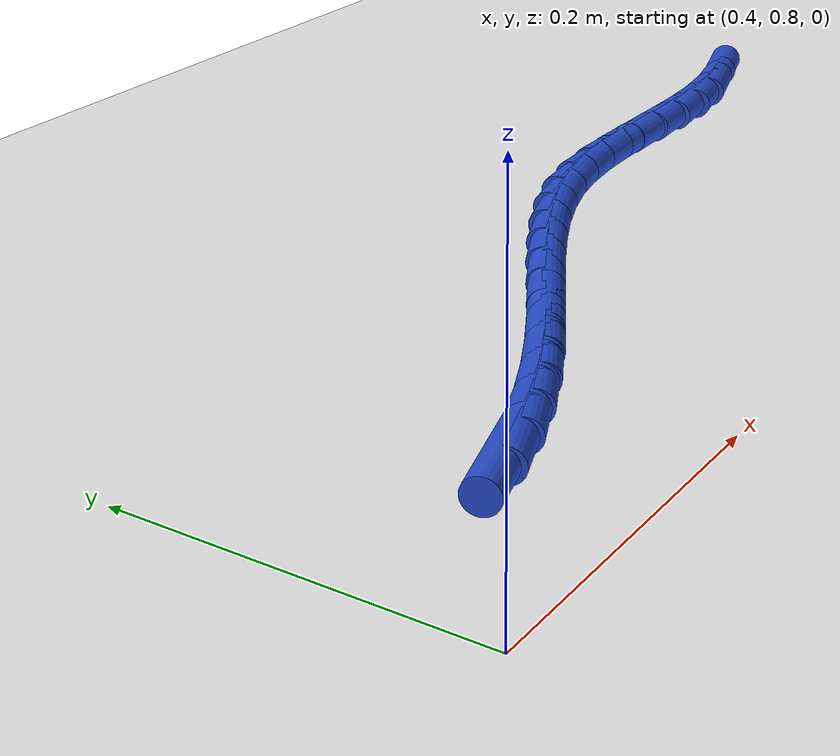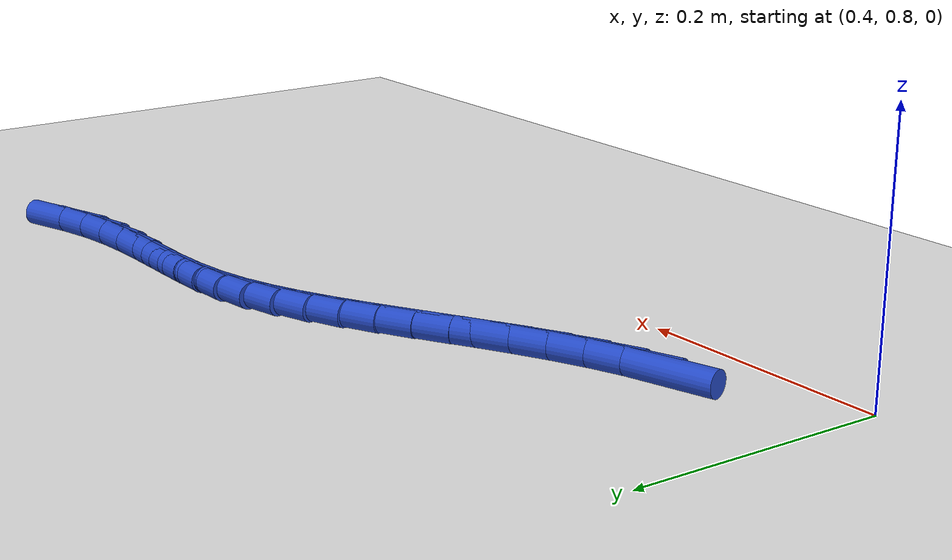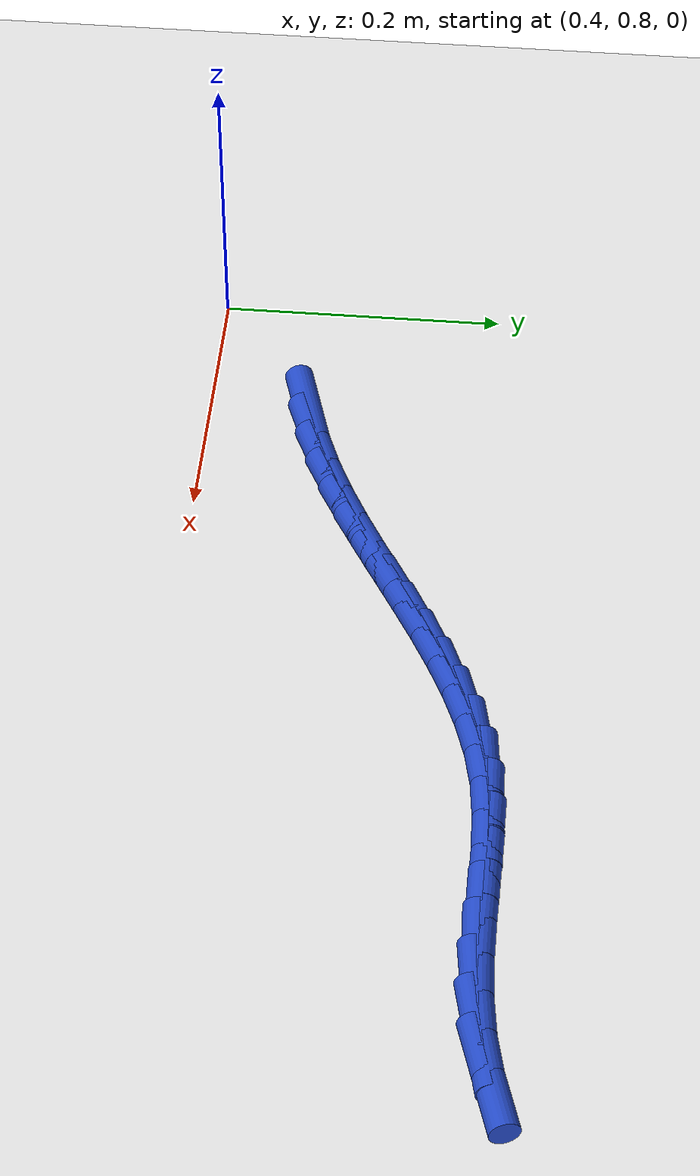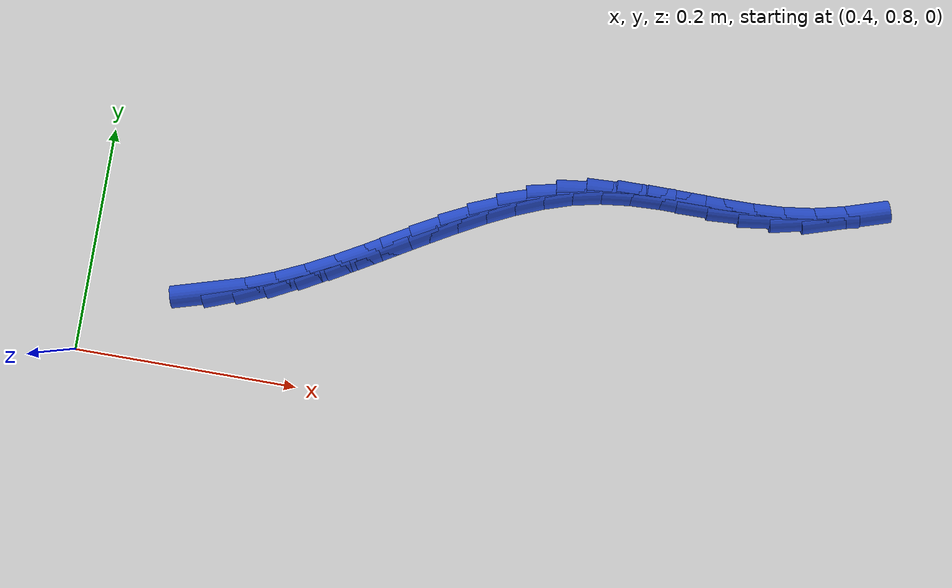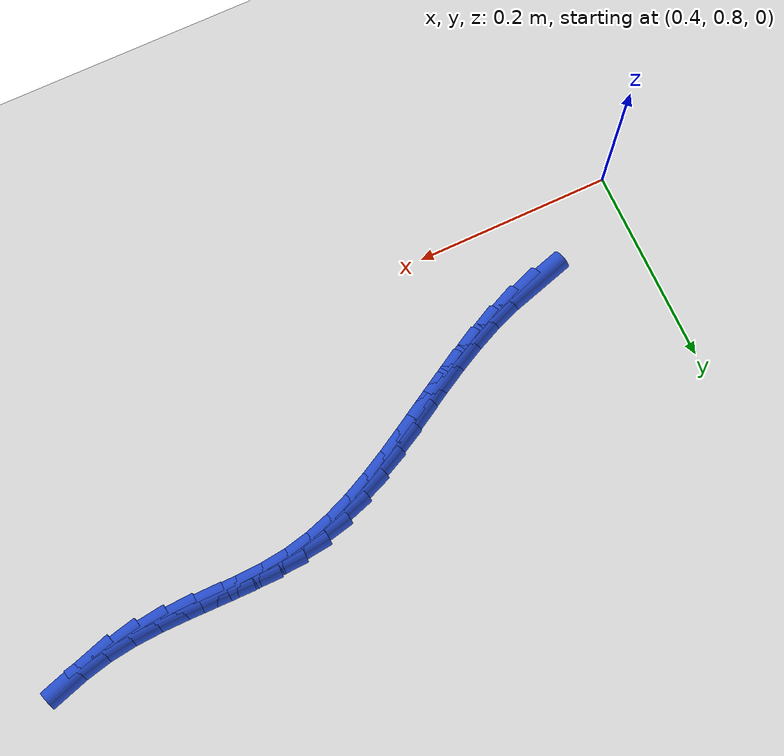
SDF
<sdf version="1.6">
 <world name="default">
  <model name="ground_plane">
   <static>1</static>
   <link name="link">
    <collision name="collision">
     <geometry><plane><normal>0 0 1</normal><size>100 100</size></plane></geometry>
     <surface><friction><ode><mu>100</mu><mu2>50</mu2></ode></friction></surface>
    </collision>
    <visual name="visual">
     <cast_shadows>0</cast_shadows>
     <geometry><plane><normal>0 0 1</normal><size>100 100</size></plane></geometry>
     <material>
      <script><uri>file://media/materials/scripts/gazebo.material</uri><name>Gazebo/WhiteGlow</name></script>
     </material>
    </visual>
   </link>
  </model>
  <model name="line">
   <link name="link_42">
    <pose>0.5153796445882639 0.8720236402008416 0.01 0 1.57 0.28514573068680454</pose>
    <collision name="collision">
     <geometry><cylinder><radius>0.01</radius><length>0.08</length></cylinder></geometry>
    </collision>
    <visual name="visual">
     <material>
      <script><name>Gazebo/Blue</name><uri>file://media/materials/scripts/gazebo.material</uri></script>
     </material>
     <geometry><cylinder><radius>0.01</radius><length>0.08</length></cylinder></geometry>
    </visual>
   </link>
   <link name="link_43">
    <pose>0.5420883910280179 0.8798528778499993 0.01 0 1.57 0.36401060627234266</pose>
    <collision name="collision">
     <geometry><cylinder><radius>0.01</radius><length>0.08</length></cylinder></geometry>
    </collision>
    <visual name="visual">
     <material>
      <script><name>Gazebo/Blue</name><uri>file://media/materials/scripts/gazebo.material</uri></script>
     </material>
     <geometry><cylinder><radius>0.01</radius><length>0.08</length></cylinder></geometry>
    </visual>
   </link>
   <link name="link_44">
    <pose>0.5680662078932549 0.8897501305601909 0.01 0 1.57 0.4275063619447899</pose>
    <collision name="collision">
     <geometry><cylinder><radius>0.01</radius><length>0.08</length></cylinder></geometry>
    </collision>
    <visual name="visual">
     <material>
      <script><name>Gazebo/Blue</name><uri>file://media/materials/scripts/gazebo.material</uri></script>
     </material>
     <geometry><cylinder><radius>0.01</radius><length>0.08</length></cylinder></geometry>
    </visual>
   </link>
   <link name="link_45">
    <pose>0.5934311161708884 0.9013065433797589 0.01 0 1.57 0.47553280146876165</pose>
    <collision name="collision">
     <geometry><cylinder><radius>0.01</radius><length>0.08</length></cylinder></geometry>
    </collision>
    <visual name="visual">
     <material>
      <script><name>Gazebo/Blue</name><uri>file://media/materials/scripts/gazebo.material</uri></script>
     </material>
     <geometry><cylinder><radius>0.01</radius><length>0.08</length></cylinder></geometry>
    </visual>
   </link>
   <link name="link_46">
    <pose>0.6183011368478332 0.9141132613570462 0.01 0 1.57 0.5083723859201813</pose>
    <collision name="collision">
     <geometry><cylinder><radius>0.01</radius><length>0.08</length></cylinder></geometry>
    </collision>
    <visual name="visual">
     <material>
      <script><name>Gazebo/Blue</name><uri>file://media/materials/scripts/gazebo.material</uri></script>
     </material>
     <geometry><cylinder><radius>0.01</radius><length>0.08</length></cylinder></geometry>
    </visual>
   </link>
   <link name="link_47">
    <pose>0.6427942909110029 0.9277614295403946 0.01 0 1.57 0.5263511903529184</pose>
    <collision name="collision">
     <geometry><cylinder><radius>0.01</radius><length>0.08</length></cylinder></geometry>
    </collision>
    <visual name="visual">
     <material>
      <script><name>Gazebo/Blue</name><uri>file://media/materials/scripts/gazebo.material</uri></script>
     </material>
     <geometry><cylinder><radius>0.01</radius><length>0.08</length></cylinder></geometry>
    </visual>
   </link>
   <link name="link_48">
    <pose>0.6670285993473112 0.9418421929781471 0.01 0 1.57 0.5296205427475181</pose>
    <collision name="collision">
     <geometry><cylinder><radius>0.01</radius><length>0.08</length></cylinder></geometry>
    </collision>
    <visual name="visual">
     <material>
      <script><name>Gazebo/Blue</name><uri>file://media/materials/scripts/gazebo.material</uri></script>
     </material>
     <geometry><cylinder><radius>0.01</radius><length>0.08</length></cylinder></geometry>
    </visual>
   </link>
   <link name="link_49">
    <pose>0.6911220831436723 0.9559466967186456 0.01 0 1.57 0.5180403513013273</pose>
    <collision name="collision">
     <geometry><cylinder><radius>0.01</radius><length>0.08</length></cylinder></geometry>
    </collision>
    <visual name="visual">
     <material>
      <script><name>Gazebo/Blue</name><uri>file://media/materials/scripts/gazebo.material</uri></script>
     </material>
     <geometry><cylinder><radius>0.01</radius><length>0.08</length></cylinder></geometry>
    </visual>
   </link>
   <link name="link_50">
    <pose>0.7151927632870003 0.9696660858102333 0.01 0 1.57 0.49114668452280724</pose>
    <collision name="collision">
     <geometry><cylinder><radius>0.01</radius><length>0.08</length></cylinder></geometry>
    </collision>
    <visual name="visual">
     <material>
      <script><name>Gazebo/Blue</name><uri>file://media/materials/scripts/gazebo.material</uri></script>
     </material>
     <geometry><cylinder><radius>0.01</radius><length>0.08</length></cylinder></geometry>
    </visual>
   </link>
   <link name="link_51">
    <pose>0.7393586607642093 0.9825915053012524 0.01 0 1.57 0.448206829963109</pose>
    <collision name="collision">
     <geometry><cylinder><radius>0.01</radius><length>0.08</length></cylinder></geometry>
    </collision>
    <visual name="visual">
     <material>
      <script><name>Gazebo/Blue</name><uri>file://media/materials/scripts/gazebo.material</uri></script>
     </material>
     <geometry><cylinder><radius>0.01</radius><length>0.08</length></cylinder></geometry>
    </visual>
   </link>
   <link name="link_52">
    <pose>0.7637377965622126 0.994314100240045 0.01 0 1.57 0.38839212132353085</pose>
    <collision name="collision">
     <geometry><cylinder><radius>0.01</radius><length>0.08</length></cylinder></geometry>
    </collision>
    <visual name="visual">
     <material>
      <script><name>Gazebo/Blue</name><uri>file://media/materials/scripts/gazebo.material</uri></script>
     </material>
     <geometry><cylinder><radius>0.01</radius><length>0.08</length></cylinder></geometry>
    </visual>
   </link>
   <link name="link_53">
    <pose>0.7884481916679248 1.004425015674954 0.01 0 1.57 0.31111868547416</pose>
    <collision name="collision">
     <geometry><cylinder><radius>0.01</radius><length>0.08</length></cylinder></geometry>
    </collision>
    <visual name="visual">
     <material>
      <script><name>Gazebo/Blue</name><uri>file://media/materials/scripts/gazebo.material</uri></script>
     </material>
     <geometry><cylinder><radius>0.01</radius><length>0.08</length></cylinder></geometry>
    </visual>
   </link>
   <link name="link_54">
    <pose>0.81360786706826 1.012515396654322 0.01 0 1.57 0.21659275194439018</pose>
    <collision name="collision">
     <geometry><cylinder><radius>0.01</radius><length>0.08</length></cylinder></geometry>
    </collision>
    <visual name="visual">
     <material>
      <script><name>Gazebo/Blue</name><uri>file://media/materials/scripts/gazebo.material</uri></script>
     </material>
     <geometry><cylinder><radius>0.01</radius><length>0.08</length></cylinder></geometry>
    </visual>
   </link>
   <link name="link_55">
    <pose>0.839334826599655 1.0181764726476783 0.01 0 1.57 0.11613499731957339</pose>
    <collision name="collision">
     <geometry><cylinder><radius>0.01</radius><length>0.08</length></cylinder></geometry>
    </collision>
    <visual name="visual">
     <material>
      <script><name>Gazebo/Blue</name><uri>file://media/materials/scripts/gazebo.material</uri></script>
     </material>
     <geometry><cylinder><radius>0.01</radius><length>0.08</length></cylinder></geometry>
    </visual>
   </link>
   <link name="link_56">
    <pose>0.8656958240897653 1.0212517452144667 0.01 0 1.57 0.04238606104450635</pose>
    <collision name="collision">
     <geometry><cylinder><radius>0.01</radius><length>0.08</length></cylinder></geometry>
    </collision>
    <visual name="visual">
     <material>
      <script><name>Gazebo/Blue</name><uri>file://media/materials/scripts/gazebo.material</uri></script>
     </material>
     <geometry><cylinder><radius>0.01</radius><length>0.08</length></cylinder></geometry>
    </visual>
   </link>
   <link name="link_57">
    <pose>0.8925935059429149 1.0223925152421307 0.01 0 1.57 0.0006929504338573164</pose>
    <collision name="collision">
     <geometry><cylinder><radius>0.01</radius><length>0.08</length></cylinder></geometry>
    </collision>
    <visual name="visual">
     <material>
      <script><name>Gazebo/Blue</name><uri>file://media/materials/scripts/gazebo.material</uri></script>
     </material>
     <geometry><cylinder><radius>0.01</radius><length>0.08</length></cylinder></geometry>
    </visual>
   </link>
   <link name="link_58">
    <pose>0.9198977392856119 1.0224114357255 0.01 0 1.57 -0.010524238132485623</pose>
    <collision name="collision">
     <geometry><cylinder><radius>0.01</radius><length>0.08</length></cylinder></geometry>
    </collision>
    <visual name="visual">
     <material>
      <script><name>Gazebo/Blue</name><uri>file://media/materials/scripts/gazebo.material</uri></script>
     </material>
     <geometry><cylinder><radius>0.01</radius><length>0.08</length></cylinder></geometry>
    </visual>
   </link>
   <link name="link_59">
    <pose>0.9474783912443645 1.0221211596594053 0.01 0 1.57 0.007688414099824325</pose>
    <collision name="collision">
     <geometry><cylinder><radius>0.01</radius><length>0.08</length></cylinder></geometry>
    </collision>
    <visual name="visual">
     <material>
      <script><name>Gazebo/Blue</name><uri>file://media/materials/scripts/gazebo.material</uri></script>
     </material>
     <geometry><cylinder><radius>0.01</radius><length>0.08</length></cylinder></geometry>
    </visual>
   </link>
   <link name="link_60">
    <pose>0.9752053289456803 1.0223343400386753 0.01 0 1.57 0.05506753761496748</pose>
    <collision name="collision">
     <geometry><cylinder><radius>0.01</radius><length>0.08</length></cylinder></geometry>
    </collision>
    <visual name="visual">
     <material>
      <script><name>Gazebo/Blue</name><uri>file://media/materials/scripts/gazebo.material</uri></script>
     </material>
     <geometry><cylinder><radius>0.01</radius><length>0.08</length></cylinder></geometry>
    </visual>
   </link>
   <link name="link_61">
    <pose>1.0029484195160674 1.023863629858141 0.01 0 1.57 0.13163289645221124</pose>
    <collision name="collision">
     <geometry><cylinder><radius>0.01</radius><length>0.08</length></cylinder></geometry>
    </collision>
    <visual name="visual">
     <material>
      <script><name>Gazebo/Blue</name><uri>file://media/materials/scripts/gazebo.material</uri></script>
     </material>
     <geometry><cylinder><radius>0.01</radius><length>0.08</length></cylinder></geometry>
    </visual>
   </link>
   <link name="link_62">
    <pose>1.0305775300820341 1.0275216821126314 0.01 0 1.57 0.22777655111118578</pose>
    <collision name="collision">
     <geometry><cylinder><radius>0.01</radius><length>0.08</length></cylinder></geometry>
    </collision>
    <visual name="visual">
     <material>
      <script><name>Gazebo/Blue</name><uri>file://media/materials/scripts/gazebo.material</uri></script>
     </material>
     <geometry><cylinder><radius>0.01</radius><length>0.08</length></cylinder></geometry>
    </visual>
   </link>
   <link name="link_63">
    <pose>1.0579828833005853 1.033874221984532 0.01 0 1.57 0.3050537521665217</pose>
    <collision name="collision">
     <geometry><cylinder><radius>0.01</radius><length>0.08</length></cylinder></geometry>
    </collision>
    <visual name="visual">
     <material>
      <script><name>Gazebo/Blue</name><uri>file://media/materials/scripts/gazebo.material</uri></script>
     </material>
     <geometry><cylinder><radius>0.01</radius><length>0.08</length></cylinder></geometry>
    </visual>
   </link>
  </model>
 </world>
</sdf>
